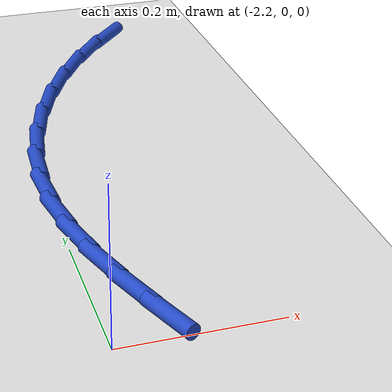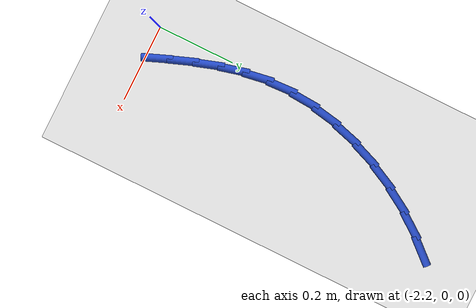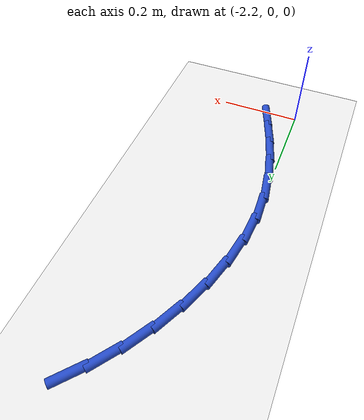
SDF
<sdf version="1.6">
 <world name="default">
  <model name="ground_plane">
   <static>1</static>
   <link name="link">
    <collision name="collision">
     <geometry><plane><normal>0 0 1</normal><size>100 100</size></plane></geometry>
     <surface><friction><ode><mu>100</mu><mu2>50</mu2></ode></friction></surface>
    </collision>
    <visual name="visual">
     <cast_shadows>0</cast_shadows>
     <geometry><plane><normal>0 0 1</normal><size>100 100</size></plane></geometry>
     <material>
      <script><uri>file://media/materials/scripts/gazebo.material</uri><name>Gazebo/WhiteGlow</name></script>
     </material>
    </visual>
   </link>
  </model>
  <model name="line">
   <link name="link_42">
    <pose>-1.9901530140447066 0.8271246991303816 0.01 0 1.57 0.8497106263935156</pose>
    <collision name="collision">
     <geometry><cylinder><radius>0.01</radius><length>0.08</length></cylinder></geometry>
    </collision>
    <visual name="visual">
     <material>
      <script><name>Gazebo/Blue</name><uri>file://media/materials/scripts/gazebo.material</uri></script>
     </material>
     <geometry><cylinder><radius>0.01</radius><length>0.08</length></cylinder></geometry>
    </visual>
   </link>
   <link name="link_43">
    <pose>-2.035210541609898 0.7758641653821046 0.01 0 1.57 0.9410197874396009</pose>
    <collision name="collision">
     <geometry><cylinder><radius>0.01</radius><length>0.08</length></cylinder></geometry>
    </collision>
    <visual name="visual">
     <material>
      <script><name>Gazebo/Blue</name><uri>file://media/materials/scripts/gazebo.material</uri></script>
     </material>
     <geometry><cylinder><radius>0.01</radius><length>0.08</length></cylinder></geometry>
    </visual>
   </link>
   <link name="link_44">
    <pose>-2.075876651806987 0.7200633379940428 0.01 0 1.57 1.029204736048905</pose>
    <collision name="collision">
     <geometry><cylinder><radius>0.01</radius><length>0.08</length></cylinder></geometry>
    </collision>
    <visual name="visual">
     <material>
      <script><name>Gazebo/Blue</name><uri>file://media/materials/scripts/gazebo.material</uri></script>
     </material>
     <geometry><cylinder><radius>0.01</radius><length>0.08</length></cylinder></geometry>
    </visual>
   </link>
   <link name="link_45">
    <pose>-2.111662187602872 0.6605789241504874 0.01 0 1.57 1.1166924150771007</pose>
    <collision name="collision">
     <geometry><cylinder><radius>0.01</radius><length>0.08</length></cylinder></geometry>
    </collision>
    <visual name="visual">
     <material>
      <script><name>Gazebo/Blue</name><uri>file://media/materials/scripts/gazebo.material</uri></script>
     </material>
     <geometry><cylinder><radius>0.01</radius><length>0.08</length></cylinder></geometry>
    </visual>
   </link>
   <link name="link_46">
    <pose>-2.14207799196445 0.598267631035729 0.01 0 1.57 1.2058838838693877</pose>
    <collision name="collision">
     <geometry><cylinder><radius>0.01</radius><length>0.08</length></cylinder></geometry>
    </collision>
    <visual name="visual">
     <material>
      <script><name>Gazebo/Blue</name><uri>file://media/materials/scripts/gazebo.material</uri></script>
     </material>
     <geometry><cylinder><radius>0.01</radius><length>0.08</length></cylinder></geometry>
    </visual>
   </link>
   <link name="link_47">
    <pose>-2.166634907858621 0.5339861658340587 0.01 0 1.57 1.2992304530373338</pose>
    <collision name="collision">
     <geometry><cylinder><radius>0.01</radius><length>0.08</length></cylinder></geometry>
    </collision>
    <visual name="visual">
     <material>
      <script><name>Gazebo/Blue</name><uri>file://media/materials/scripts/gazebo.material</uri></script>
     </material>
     <geometry><cylinder><radius>0.01</radius><length>0.08</length></cylinder></geometry>
    </visual>
   </link>
   <link name="link_48">
    <pose>-2.1848437782522807 0.468591235729767 0.01 0 1.57 1.3992859410874028</pose>
    <collision name="collision">
     <geometry><cylinder><radius>0.01</radius><length>0.08</length></cylinder></geometry>
    </collision>
    <visual name="visual">
     <material>
      <script><name>Gazebo/Blue</name><uri>file://media/materials/scripts/gazebo.material</uri></script>
     </material>
     <geometry><cylinder><radius>0.01</radius><length>0.08</length></cylinder></geometry>
    </visual>
   </link>
   <link name="link_49">
    <pose>-2.196215446112329 0.40293954790714515 0.01 0 1.57 1.5086902874557508</pose>
    <collision name="collision">
     <geometry><cylinder><radius>0.01</radius><length>0.08</length></cylinder></geometry>
    </collision>
    <visual name="visual">
     <material>
      <script><name>Gazebo/Blue</name><uri>file://media/materials/scripts/gazebo.material</uri></script>
     </material>
     <geometry><cylinder><radius>0.01</radius><length>0.08</length></cylinder></geometry>
    </visual>
   </link>
   <link name="link_50">
    <pose>-2.2002607544056634 0.337887809550484 0.01 0 1.57 -1.5143507404328391</pose>
    <collision name="collision">
     <geometry><cylinder><radius>0.01</radius><length>0.08</length></cylinder></geometry>
    </collision>
    <visual name="visual">
     <material>
      <script><name>Gazebo/Blue</name><uri>file://media/materials/scripts/gazebo.material</uri></script>
     </material>
     <geometry><cylinder><radius>0.01</radius><length>0.08</length></cylinder></geometry>
    </visual>
   </link>
   <link name="link_51">
    <pose>-2.1966608614477985 0.2741792157360035 0.01 0 1.57 -1.4056290870669386</pose>
    <collision name="collision">
     <geometry><cylinder><radius>0.01</radius><length>0.08</length></cylinder></geometry>
    </collision>
    <visual name="visual">
     <material>
      <script><name>Gazebo/Blue</name><uri>file://media/materials/scripts/gazebo.material</uri></script>
     </material>
     <geometry><cylinder><radius>0.01</radius><length>0.08</length></cylinder></geometry>
    </visual>
   </link>
   <link name="link_52">
    <pose>-2.1862600905781413 0.21178173303017941 0.01 0 1.57 -1.318012167970439</pose>
    <collision name="collision">
     <geometry><cylinder><radius>0.01</radius><length>0.08</length></cylinder></geometry>
    </collision>
    <visual name="visual">
     <material>
      <script><name>Gazebo/Blue</name><uri>file://media/materials/scripts/gazebo.material</uri></script>
     </material>
     <geometry><cylinder><radius>0.01</radius><length>0.08</length></cylinder></geometry>
    </visual>
   </link>
   <link name="link_53">
    <pose>-2.170388916980721 0.1503393165632086 0.01 0 1.57 -1.2530749100623728</pose>
    <collision name="collision">
     <geometry><cylinder><radius>0.01</radius><length>0.08</length></cylinder></geometry>
    </collision>
    <visual name="visual">
     <material>
      <script><name>Gazebo/Blue</name><uri>file://media/materials/scripts/gazebo.material</uri></script>
     </material>
     <geometry><cylinder><radius>0.01</radius><length>0.08</length></cylinder></geometry>
    </visual>
   </link>
   <link name="link_54">
    <pose>-2.150379448478663 0.08949483334077826 0.01 0 1.57 -1.210734809280755</pose>
    <collision name="collision">
     <geometry><cylinder><radius>0.01</radius><length>0.08</length></cylinder></geometry>
    </collision>
    <visual name="visual">
     <material>
      <script><name>Gazebo/Blue</name><uri>file://media/materials/scripts/gazebo.material</uri></script>
     </material>
     <geometry><cylinder><radius>0.01</radius><length>0.08</length></cylinder></geometry>
    </visual>
   </link>
   <link name="link_55">
    <pose>-2.1275637928950917 0.028891150368575806 0.01 0 1.57 -1.1902654088559161</pose>
    <collision name="collision">
     <geometry><cylinder><radius>0.01</radius><length>0.08</length></cylinder></geometry>
    </collision>
    <visual name="visual">
     <material>
      <script><name>Gazebo/Blue</name><uri>file://media/materials/scripts/gazebo.material</uri></script>
     </material>
     <geometry><cylinder><radius>0.01</radius><length>0.08</length></cylinder></geometry>
    </visual>
   </link>
  </model>
 </world>
</sdf>
